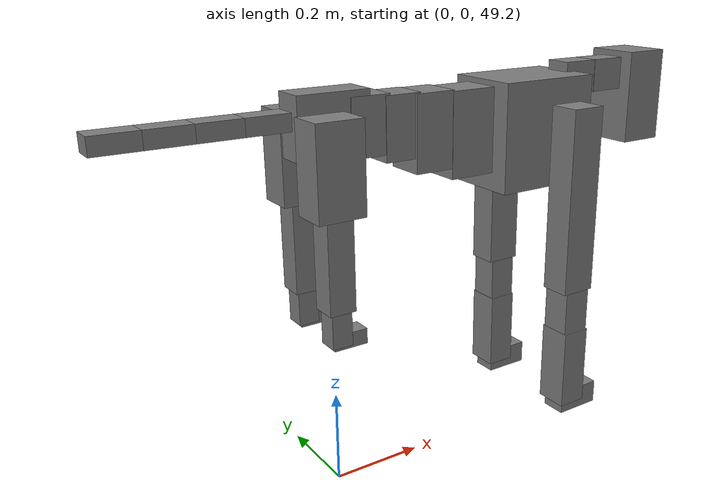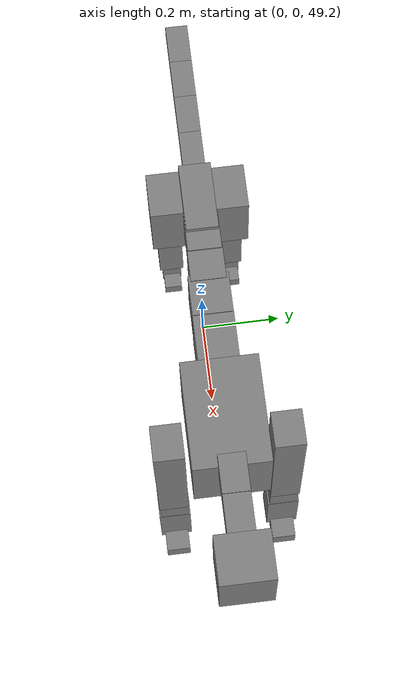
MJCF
<mujoco model="dog">

    <default>
        <joint armature="0.02" stiffness="1" damping="0.2" limited="true"/>
        <geom condim="3" friction="1 0.05 0.05" margin="0.01"/>
        <motor ctrllimited="true" ctrlrange="-1.0 1.0" forcelimited="true" gear="50"/>
    </default>

    <compiler inertiafromgeom="true" angle="radian"/>

    <option timestep="0.016" iterations="50" tolerance="1e-10" solver="Newton" jacobian="dense" cone="pyramidal"/>

    <size nconmax="20000" njmax="60000" nstack="5000000"/>
    <visual>
        <map force="0.1" zfar="30"/>
        <rgba haze="0.15 0.25 0.35 1"/>
        <quality shadowsize="2048"/>
        <global offwidth="800" offheight="800"/>
    </visual>

    <asset>
        <texture type="skybox" builtin="gradient" rgb1="0.3 0.5 0.7" rgb2="0 0 0" width="512" height="512"/>
        <texture name="texplane" type="2d" builtin="checker" rgb1=".2 .3 .4" rgb2=".1 0.15 0.2" width="512" height="512"
                 mark="cross" markrgb=".8 .8 .8"/>
        <texture name="texgeom" type="cube" builtin="flat" mark="cross" width="127" height="1278" rgb1="0.8 0.6 0.4"
                 rgb2="0.8 0.6 0.4" markrgb="1 1 1" random="0.01"/>

        <material name="matplane" reflectance="0.3" texture="texplane" texrepeat="1 1" texuniform="true"/>
        <material name="matgeom" texture="texgeom" texuniform="true" rgba="0.8 0.6 .4 1"/>
    </asset>

    <worldbody>
        <geom name="floor" pos="0 0 0" size="0 0 .25" type="plane" material="matplane" condim="3"/>

        <light directional="false" diffuse=".2 .2 .2" specular="0 0 0" pos="0 0 5" dir="0 0 -1" castshadow="false"/>
        <light mode="targetbodycom" target="torso" directional="false" diffuse=".8 .8 .8" specular="0.3 0.3 0.3"
               pos="0 0 4.0" dir="0 0 -1"/>

        <body name="root" pos="0 0 50">
            <freejoint name="root_1"/>
            <geom type="box" pos="0 0 -0.02" size="0.0774  0.0358  0.063" density="2030"/>

            <body name="spine1" pos="0.054 0 0">
                <joint name="spine1_y" axis="0 1 0" range="0 0.7" limited="true"/>
                <geom type="box" pos="0.02375 0 -0.03" size="0.04375  0.0375  0.05985" density="2030"/>

                <body name="spine2" pos="0.0612 0 0">
                    <joint name="spine2_y" axis="0 1 0" range="-0.15 0.15" limited="true"/>
                    <geom type="box" pos="0.03555  0  -0.04" size="0.04055  0.039  0.06615" density="2030"/>

                    <body name="spine3" pos="0.0730 0 0">
                        <joint name="spine3_y" axis="0 1 0" range="-0.15 0.15" limited="true"/>
                        <geom type="box" pos="0.03555  0  -0.057" size="0.04555  0.0445  0.081" density="2030"/>

                        <body name="spine4" pos="0.0780 0 0">
                            <joint name="spine4_y" axis="0 1 0" range="-0.15 0.15" limited="true"/>
                            <geom type="box" pos="0.05265  0  -0.07" size="0.05265  0.045  0.09135" density="2030"/>

                            <body name="torso" pos="0.1082 0 0">
                                <joint name="torso_y" axis="0 1 0" range="-0.15 0.15" limited="true"/>
                                <geom type="box" pos="0.11925  0  -0.085" size="0.11925  0.085  0.11745"
                                      density="2030"/>

                                <body name="neck1" pos="0.2160  0   0.0180">
                                    <joint name="neck1_y" axis="0 1 0" range="-1.2  -1" limited="true"/>
                                    <geom type="box" pos="0.0423  0  0" size="0.0423  0.03  0.036" density="2325"/>

                                    <body name="neck2" pos="0.0853  0  0">
                                        <joint name="neck2_y" axis="0 1 0" range="0.1  0" limited="true"/>
                                        <geom type="box" pos="0.0423  0  0" size="0.0423  0.03  0.036" density="2325"/>

                                        <body name="head" pos="0.0853  0  0">
                                            <joint name="head_y" axis="0 1 0" range="-0.3  -0.2" limited="true"/>
                                            <geom type="box" pos="0.0531  0  -0.055" size="0.0531  0.06  0.1044"
                                                  density="4030"/>

                                        </body>
                                    </body>
                                </body>

                                <body name="front_shoulder" pos="0.156  0   -0.0480">
                                    <joint name="front_shoulder_y" axis="0 1 0" range="-1 1.5" limited="true"/>
                                    <geom type="box" pos="0 0.13 -0.1794" size="0.0398  0.0341  0.2061" density="1158"/>
                                    <geom type="box" pos="0 -0.13 -0.1794" size="0.0398  0.0341  0.2061"
                                          density="1158"/>

                                    <body name="front_elbow" pos="0  0  -0.3589">
                                        <joint name="front_elbow_y" axis="0 1 0" range="-2 0" limited="true"/>
                                        <geom type="box" pos="0 0.13 -0.0682" size="0.0323  0.0330  0.0682"
                                              density="1081"/>
                                        <geom type="box" pos="0 -0.13 -0.0682" size="0.0323  0.0330  0.0682"
                                              density="1081"/>

                                        <body name="front_wrist" pos="0  0  -0.1365">
                                            <joint name="front_wrist_y" axis="0 1 0" range="-0.2 0" limited="true"/>
                                            <geom type="box" pos="0 0.13 -0.0769" size="0.0330  0.0367  0.0901"
                                                  density="1664"/>
                                            <geom type="box" pos="0 -0.13 -0.0769" size="0.0330  0.0367  0.0901"
                                                  density="1664"/>

                                            <body name="front_finger_end" pos="0  0  -0.1539">
                                                <joint name="front_finger_y" axis="0 1 0" range="-0.4 1"
                                                       limited="true"/>
                                                <geom type="box" pos="0.0281  0.13  -0.0113"
                                                      size="0.0516  0.0281  0.0263" density="1515"/>
                                                <geom type="box" pos="0.0281  -0.13  -0.0113"
                                                      size="0.0516  0.0281  0.0263" density="1515"/>

                                            </body>

                                        </body>
                                    </body>
                                </body>

                            </body>
                        </body>
                    </body>
                </body>
            </body>

            <body name="back_hip" pos="-0.03 0 -0.018">
                <joint name="back_hip_y" axis="0 1 0" range="-1.5 0.3" limited="true"/>
                <geom type="box" pos="0 0.07 -0.0707" size="0.0506  0.0397  0.0935" density="1154"/>
                <geom type="box" pos="0 -0.07 -0.0707" size="0.0506  0.0397  0.0935" density="1154"/>

                <body name="back_knee" pos="0  0  -0.1413">
                    <joint name="back_knee_y" axis="0 1 0" range="0 2.8" limited="true"/>
                    <geom type="box" pos="0 0.07 -0.0982" size="0.0283  0.0279  0.1138" density="1227"/>
                    <geom type="box" pos="0 -0.07 -0.0982" size="0.0283  0.0279  0.1138" density="1227"/>

                    <body name="back_ankle" pos="0  0  -0.1964">
                        <joint name="back_ankle_y" axis="0 1 0" range="-2.2 0" limited="true"/>
                        <geom type="box" pos="0 0.07 -0.0383" size="0.0220  0.0220  0.0496" density="1284"/>
                        <geom type="box" pos="0 -0.07 -0.0383" size="0.0220  0.0220  0.0496" density="1284"/>

                        <body name="back_toe_end" pos="0  0  -0.0766">
                            <joint name="back_toe_y" axis="0 1 0" range="-0.4 1" limited="true"/>
                            <geom type="box" pos="0.0199  0.07  -0.0011" size="0.0364  0.0199  0.0161" density="1515"/>
                            <geom type="box" pos="0.0199  -0.07  -0.0011" size="0.0364  0.0199  0.0161" density="1515"/>

                        </body>
                    </body>
                </body>
            </body>

            <body name="tail1" pos="-0.074 0 -0.006">
                <joint name="tail1_y" axis="0 1 0" range="-0.2 0.2" limited="true"/>
                <geom type="box" pos="-0.0536  0  0" size="0.045  0.025  0.0175" density="1587"/>

                <body name="tail2" pos="-0.09 0 0">
                    <joint name="tail2_y" axis="0 1 0" range="-0.2 0.2" limited="true"/>
                    <geom type="box" pos="-0.0536  0  0" size="0.045  0.025  0.0175" density="1587"/>

                    <body name="tail3" pos="-0.09 0 0">
                        <joint name="tail3_y" axis="0 1 0" range="-0.2 0.2" limited="true"/>
                        <geom type="box" pos="-0.0536  0  0" size="0.045  0.025  0.0175" density="1587"/>

                        <body name="tail4" pos="-0.09 0 0">
                            <joint name="tail4_y" axis="0 1 0" range="-0.2 0.2" limited="true"/>
                            <geom type="box" pos="-0.0536  0  0" size="0.045  0.025  0.0175" density="1587"/>

                        </body>
                    </body>
                </body>
            </body>
        </body>
    </worldbody>

    <actuator>
        <motor joint="spine1_y" forcerange="-150 150     "/>
        <motor joint="spine2_y" forcerange="-150 150     "/>
        <motor joint="spine3_y" forcerange="-150 150     "/>
        <motor joint="spine4_y" forcerange="-150 150     "/>
        <motor joint="torso_y" forcerange="-150 150     "/>
        <motor joint="neck1_y" forcerange="-100 100       "/>
        <motor joint="neck2_y" forcerange="-100 100       "/>
        <motor joint="head_y" forcerange="-150 150       "/>
        <motor joint="front_shoulder_y" forcerange="-131.86 195.18"/>
        <motor joint="front_elbow_y" forcerange="-164.05 175.78"/>
        <motor joint="front_wrist_y" forcerange="-146.08 147.18"/>
        <motor joint="front_finger_y" forcerange="-52.30 57.69"/>
        <motor joint="back_hip_y" forcerange="-380.29 349.24"/>
        <motor joint="back_knee_y" forcerange="-385.15 220.19"/>
        <motor joint="back_angle_y" forcerange="-155.24 97.02"/>
        <motor joint="back_toe_y" forcerange="-22.30 56.60"/>
        <motor joint="tail1_y" forcerange="-50 50     "/>
        <motor joint="tail2_y" forcerange="-50 50     "/>
        <motor joint="tail3_y" forcerange="-50 50     "/>
        <motor joint="tail4_y" forcerange="-50 50     "/>
    </actuator>
</mujoco>
